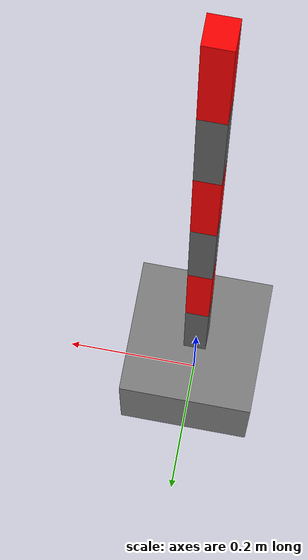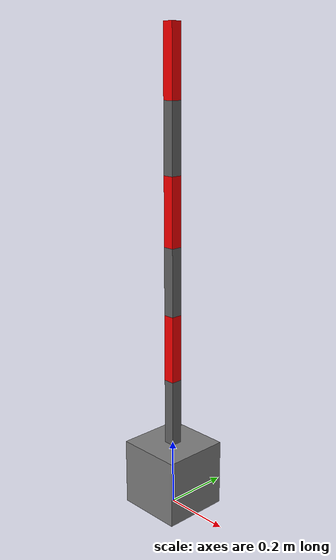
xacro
<?xml version="1.0"?>
<robot name = "arm" xmlns:xacro="http://www.ros.org/wiki/xacro">

<xacro:property name="box" value="0.2"/>
<xacro:property name="link" value="${box/6}"/>
<xacro:property name="tool" value="0.05"/>

<link name ="base_link">
    <visual>
        <origin xyz="0 0 0.1" rpy="0 0 0"/>
        <geometry>
            <box size="${box} ${box} ${box}"/>
        </geometry>
        <material name="light gray">
            <color rgba = "0.5 0.5 0.5 1"/>
        </material>
    </visual>
</link>

<joint name="joint1" type="revolute">
    <parent link="base_link"/>
    <child link="link1"/>
    <origin xyz="0 0 ${box}" rpy="0 0 0"/>
    <axis xyz="0 0 1"/>
    <limit lower="${-pi}" upper="${pi}" effort="10" velocity="1.0"/>
</joint>

<link name ="link1">
    <visual>
        <origin xyz="0 0 0.1" rpy="0 0 0"/>
        <geometry>
            <box size="${link} ${link} ${box}"/>
        </geometry>
        <material name="gray">
            <color rgba = "0.4 0.4 0.4 1"/>
        </material>
    </visual>
</link>

<joint name="joint2" type="revolute">
    <parent link="link1"/>
    <child link="link2"/>
    <origin xyz="0 0 ${box}" rpy="0 0 0"/>
    <axis xyz="0 1 0"/>
    <limit lower="${-pi/2}" upper="${pi/2}" effort="10" velocity="1.0"/>
</joint>

<link name ="link2">
    <visual>
        <origin xyz="0 0 0.1" rpy="0 0 0"/>
        <geometry>
            <box size="${link} ${link} ${box}"/>
        </geometry>
        <material name="red">
            <color rgba = "1 0 0 1"/>
        </material>
    </visual>
</link>

<joint name="joint3" type="revolute">
    <parent link="link2"/>
    <child link="link3"/>
    <origin xyz="0 0 ${box}" rpy="0 0 0"/>
    <axis xyz="0 1 0"/>
    <limit lower="${-2.6}" upper="${2.6}" effort="10" velocity="1.0"/>
</joint>

<link name ="link3">
    <visual>
        <origin xyz="0 0 0.1" rpy="0 0 0"/>
        <geometry>
            <box size="${link} ${link} ${box}"/>
        </geometry>
        <material name="gay">
            <color rgba = "0.4 0.4 0.4 1"/>
        </material>
    </visual>
</link>

<joint name="joint4" type="revolute">
    <parent link="link3"/>
    <child link="link4"/>
    <origin xyz="0 0 ${box}" rpy="0 0 0"/>
    <axis xyz="0 0 1"/>
    <limit lower="${-pi}" upper="${pi}" effort="10" velocity="1.0"/>
</joint>

<link name ="link4">
    <visual>
        <origin xyz="0 0 0.1" rpy="0 0 0"/>
        <geometry>
            <box size="${link} ${link} ${box}"/>
        </geometry>
        <material name="red">
            <color rgba = "1 0 0 1"/>
        </material>
    </visual>
</link>

<joint name="joint5" type="revolute">
    <parent link="link4"/>
    <child link="link5"/>
    <origin xyz="0 0 ${box}" rpy="0 0 0"/>
    <axis xyz="0 1 0"/>
    <limit lower="${-2.1}" upper="${2.1}" effort="10" velocity="1.0"/>
</joint>

<link name ="link5">
    <visual>
        <origin xyz="0 0 0.1" rpy="0 0 0"/>
        <geometry>
            <box size="${link} ${link} ${box}"/>
        </geometry>
        <material name="gray">
            <color rgba = "0.4 0.4 0.4 1"/>
        </material>
    </visual>
</link>

<joint name="joint6" type="revolute">
    <parent link="link5"/>
    <child link="link6"/>
    <origin xyz="0 0 ${box}" rpy="0 0 0"/>
    <axis xyz="0 0 1"/>
    <limit lower="${-pi}" upper="${pi}" effort="10" velocity="1.0"/>
</joint>

<link name ="link6">
    <visual>
        <origin xyz="0 0 0.1" rpy="0 0 0"/>
        <geometry>
            <box size="${link} ${link} ${box}"/>
        </geometry>
        <material name="red">
            <color rgba = "1 0 0 1"/>
        </material>
    </visual>
</link>

<joint name="tool0_joint" type="fixed">
    <parent link="link6"/>
    <child link="tool0"/>
    <origin xyz="0 0 ${box}" rpy="0 0 0"/>
</joint>

<link name ="tool0">
</link>

</robot>
